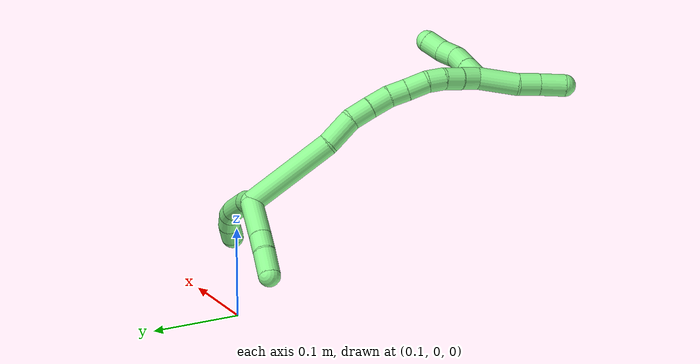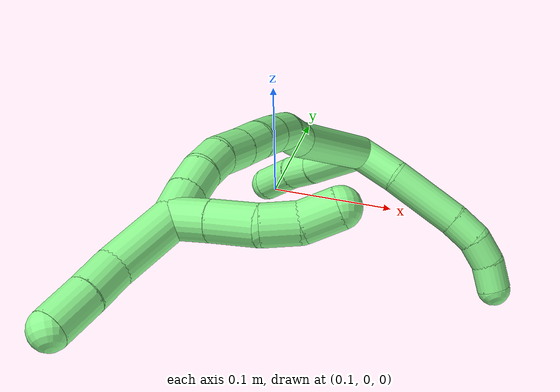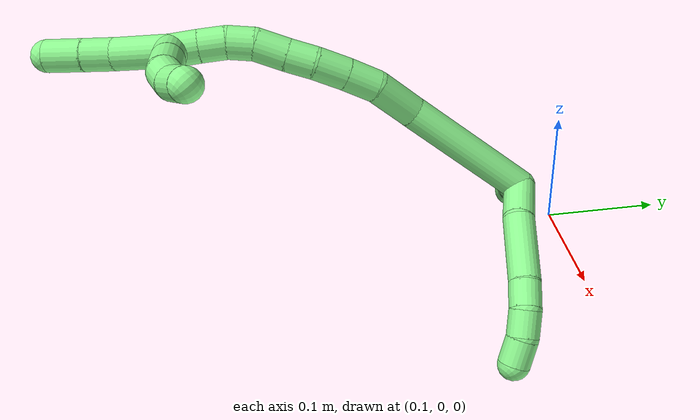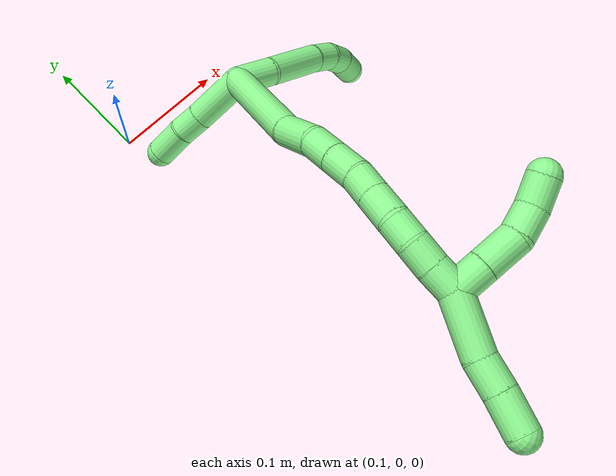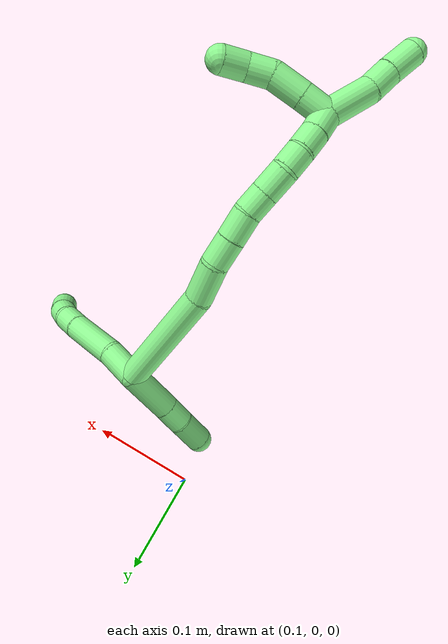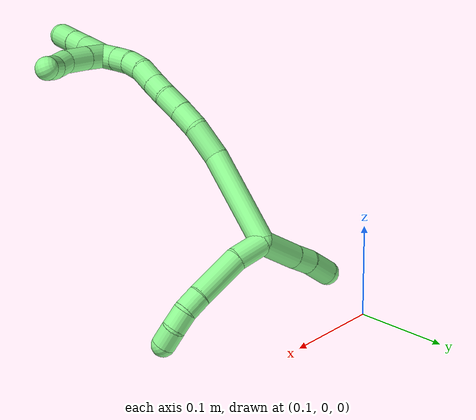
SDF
<sdf version="1.7">
 <world name="default">
  <model name="13">
   <static>0</static>
   <link name="13">
    <collision name="collision-cylinder-e_1_2_8">
     <pose>-0.002527 0.010666 0.01242 -0.709589 -0.153142 0.05683</pose>
     <geometry><cylinder><radius>0.0125</radius><length>0.03313</length></cylinder></geometry>
     <surface>
      <friction><ode><mu>1.16</mu><mu2>1.16</mu2><slip1>0</slip1><slip2>0</slip2></ode></friction>
      <contact><ode><kp>1e+06</kp><kd>1</kd><max_vel>0</max_vel><min_depth>0.001</min_depth></ode></contact>
     </surface>
    </collision>
    <visual name="visual-cylinder-e_1_2_8">
     <pose>-0.002527 0.010666 0.01242 -0.709589 -0.153142 0.05683</pose>
     <geometry><cylinder><radius>0.0125</radius><length>0.03313</length></cylinder></geometry>
     <material><ambient>0.564706 0.984314 0.572549 1</ambient></material>
    </visual>
    <collision name="collision-cylinder-e_2_8_9">
     <pose>-0.003657 0.040422 0.043829 -0.788026 0.051808 -0.021543</pose>
     <geometry><cylinder><radius>0.0125</radius><length>0.053925</length></cylinder></geometry>
     <surface>
      <friction><ode><mu>1.16</mu><mu2>1.16</mu2><slip1>0</slip1><slip2>0</slip2></ode></friction>
      <contact><ode><kp>1e+06</kp><kd>1</kd><max_vel>0</max_vel><min_depth>0.001</min_depth></ode></contact>
     </surface>
    </collision>
    <visual name="visual-cylinder-e_2_8_9">
     <pose>-0.003657 0.040422 0.043829 -0.788026 0.051808 -0.021543</pose>
     <geometry><cylinder><radius>0.0125</radius><length>0.053925</length></cylinder></geometry>
     <material><ambient>0.564706 0.984314 0.572549 1</ambient></material>
    </visual>
    <collision name="collision-cylinder-e_3_9_10">
     <pose>-0.000807 0.066414 0.070796 -0.713264 0.136973 -0.0511</pose>
     <geometry><cylinder><radius>0.0125</radius><length>0.021296</length></cylinder></geometry>
     <surface>
      <friction><ode><mu>1.16</mu><mu2>1.16</mu2><slip1>0</slip1><slip2>0</slip2></ode></friction>
      <contact><ode><kp>1e+06</kp><kd>1</kd><max_vel>0</max_vel><min_depth>0.001</min_depth></ode></contact>
     </surface>
    </collision>
    <visual name="visual-cylinder-e_3_9_10">
     <pose>-0.000807 0.066414 0.070796 -0.713264 0.136973 -0.0511</pose>
     <geometry><cylinder><radius>0.0125</radius><length>0.021296</length></cylinder></geometry>
     <material><ambient>0.564706 0.984314 0.572549 1</ambient></material>
    </visual>
    <collision name="collision-cylinder-e_4_10_11">
     <pose>0.004873 0.078209 0.086938 -0.539931 0.417821 -0.117197</pose>
     <geometry><cylinder><radius>0.0125</radius><length>0.020831</length></cylinder></geometry>
     <surface>
      <friction><ode><mu>1.16</mu><mu2>1.16</mu2><slip1>0</slip1><slip2>0</slip2></ode></friction>
      <contact><ode><kp>1e+06</kp><kd>1</kd><max_vel>0</max_vel><min_depth>0.001</min_depth></ode></contact>
     </surface>
    </collision>
    <visual name="visual-cylinder-e_4_10_11">
     <pose>0.004873 0.078209 0.086938 -0.539931 0.417821 -0.117197</pose>
     <geometry><cylinder><radius>0.0125</radius><length>0.020831</length></cylinder></geometry>
     <material><ambient>0.564706 0.984314 0.572549 1</ambient></material>
    </visual>
    <collision name="collision-cylinder-e_5_11_6">
     <pose>0.014531 0.085344 0.103695 -0.255148 0.549041 -0.072218</pose>
     <geometry><cylinder><radius>0.0125</radius><length>0.020818</length></cylinder></geometry>
     <surface>
      <friction><ode><mu>1.16</mu><mu2>1.16</mu2><slip1>0</slip1><slip2>0</slip2></ode></friction>
      <contact><ode><kp>1e+06</kp><kd>1</kd><max_vel>0</max_vel><min_depth>0.001</min_depth></ode></contact>
     </surface>
    </collision>
    <visual name="visual-cylinder-e_5_11_6">
     <pose>0.014531 0.085344 0.103695 -0.255148 0.549041 -0.072218</pose>
     <geometry><cylinder><radius>0.0125</radius><length>0.020818</length></cylinder></geometry>
     <material><ambient>0.564706 0.984314 0.572549 1</ambient></material>
    </visual>
    <collision name="collision-cylinder-e_1_2_12">
     <pose>0.0202 -0.011338 -0.005803 2.04385 1.00822 1.4679</pose>
     <geometry><cylinder><radius>0.0125</radius><length>0.047761</length></cylinder></geometry>
     <surface>
      <friction><ode><mu>1.16</mu><mu2>1.16</mu2><slip1>0</slip1><slip2>0</slip2></ode></friction>
      <contact><ode><kp>1e+06</kp><kd>1</kd><max_vel>0</max_vel><min_depth>0.001</min_depth></ode></contact>
     </surface>
    </collision>
    <visual name="visual-cylinder-e_1_2_12">
     <pose>0.0202 -0.011338 -0.005803 2.04385 1.00822 1.4679</pose>
     <geometry><cylinder><radius>0.0125</radius><length>0.047761</length></cylinder></geometry>
     <material><ambient>0.564706 0.984314 0.572549 1</ambient></material>
    </visual>
    <collision name="collision-cylinder-e_2_12_13">
     <pose>0.049596 -0.028033 -0.014888 2.12049 0.97145 1.51167</pose>
     <geometry><cylinder><radius>0.0125</radius><length>0.022275</length></cylinder></geometry>
     <surface>
      <friction><ode><mu>1.16</mu><mu2>1.16</mu2><slip1>0</slip1><slip2>0</slip2></ode></friction>
      <contact><ode><kp>1e+06</kp><kd>1</kd><max_vel>0</max_vel><min_depth>0.001</min_depth></ode></contact>
     </surface>
    </collision>
    <visual name="visual-cylinder-e_2_12_13">
     <pose>0.049596 -0.028033 -0.014888 2.12049 0.97145 1.51167</pose>
     <geometry><cylinder><radius>0.0125</radius><length>0.022275</length></cylinder></geometry>
     <material><ambient>0.564706 0.984314 0.572549 1</ambient></material>
    </visual>
    <collision name="collision-cylinder-e_3_13_5">
     <pose>0.072102 -0.039688 -0.020943 1.98548 1.09368 1.50164</pose>
     <geometry><cylinder><radius>0.0125</radius><length>0.029964</length></cylinder></geometry>
     <surface>
      <friction><ode><mu>1.16</mu><mu2>1.16</mu2><slip1>0</slip1><slip2>0</slip2></ode></friction>
      <contact><ode><kp>1e+06</kp><kd>1</kd><max_vel>0</max_vel><min_depth>0.001</min_depth></ode></contact>
     </surface>
    </collision>
    <visual name="visual-cylinder-e_3_13_5">
     <pose>0.072102 -0.039688 -0.020943 1.98548 1.09368 1.50164</pose>
     <geometry><cylinder><radius>0.0125</radius><length>0.029964</length></cylinder></geometry>
     <material><ambient>0.564706 0.984314 0.572549 1</ambient></material>
    </visual>
    <collision name="collision-cylinder-e_1_2_14">
     <pose>-0.035172 -0.037586 0.012695 1.24507 -0.725343 -0.531803</pose>
     <geometry><cylinder><radius>0.0125</radius><length>0.106037</length></cylinder></geometry>
     <surface>
      <friction><ode><mu>1.16</mu><mu2>1.16</mu2><slip1>0</slip1><slip2>0</slip2></ode></friction>
      <contact><ode><kp>1e+06</kp><kd>1</kd><max_vel>0</max_vel><min_depth>0.001</min_depth></ode></contact>
     </surface>
    </collision>
    <visual name="visual-cylinder-e_1_2_14">
     <pose>-0.035172 -0.037586 0.012695 1.24507 -0.725343 -0.531803</pose>
     <geometry><cylinder><radius>0.0125</radius><length>0.106037</length></cylinder></geometry>
     <material><ambient>0.564706 0.984314 0.572549 1</ambient></material>
    </visual>
    <collision name="collision-cylinder-e_2_14_15">
     <pose>-0.085117 -0.084847 0.030668 1.07139 -0.929865 -0.578783</pose>
     <geometry><cylinder><radius>0.0125</radius><length>0.036861</length></cylinder></geometry>
     <surface>
      <friction><ode><mu>1.16</mu><mu2>1.16</mu2><slip1>0</slip1><slip2>0</slip2></ode></friction>
      <contact><ode><kp>1e+06</kp><kd>1</kd><max_vel>0</max_vel><min_depth>0.001</min_depth></ode></contact>
     </surface>
    </collision>
    <visual name="visual-cylinder-e_2_14_15">
     <pose>-0.085117 -0.084847 0.030668 1.07139 -0.929865 -0.578783</pose>
     <geometry><cylinder><radius>0.0125</radius><length>0.036861</length></cylinder></geometry>
     <material><ambient>0.564706 0.984314 0.572549 1</ambient></material>
    </visual>
    <collision name="collision-cylinder-e_3_15_16">
     <pose>-0.107674 -0.102614 0.041564 0.963944 -0.668736 -0.359553</pose>
     <geometry><cylinder><radius>0.0125</radius><length>0.02511</length></cylinder></geometry>
     <surface>
      <friction><ode><mu>1.16</mu><mu2>1.16</mu2><slip1>0</slip1><slip2>0</slip2></ode></friction>
      <contact><ode><kp>1e+06</kp><kd>1</kd><max_vel>0</max_vel><min_depth>0.001</min_depth></ode></contact>
     </surface>
    </collision>
    <visual name="visual-cylinder-e_3_15_16">
     <pose>-0.107674 -0.102614 0.041564 0.963944 -0.668736 -0.359553</pose>
     <geometry><cylinder><radius>0.0125</radius><length>0.02511</length></cylinder></geometry>
     <material><ambient>0.564706 0.984314 0.572549 1</ambient></material>
    </visual>
    <collision name="collision-cylinder-e_4_16_17">
     <pose>-0.122965 -0.118657 0.053269 0.917422 -0.643193 -0.326138</pose>
     <geometry><cylinder><radius>0.0125</radius><length>0.025031</length></cylinder></geometry>
     <surface>
      <friction><ode><mu>1.16</mu><mu2>1.16</mu2><slip1>0</slip1><slip2>0</slip2></ode></friction>
      <contact><ode><kp>1e+06</kp><kd>1</kd><max_vel>0</max_vel><min_depth>0.001</min_depth></ode></contact>
     </surface>
    </collision>
    <visual name="visual-cylinder-e_4_16_17">
     <pose>-0.122965 -0.118657 0.053269 0.917422 -0.643193 -0.326138</pose>
     <geometry><cylinder><radius>0.0125</radius><length>0.025031</length></cylinder></geometry>
     <material><ambient>0.564706 0.984314 0.572549 1</ambient></material>
    </visual>
    <collision name="collision-cylinder-e_5_17_18">
     <pose>-0.135156 -0.134518 0.064565 0.988419 -0.459431 -0.250672</pose>
     <geometry><cylinder><radius>0.0125</radius><length>0.021131</length></cylinder></geometry>
     <surface>
      <friction><ode><mu>1.16</mu><mu2>1.16</mu2><slip1>0</slip1><slip2>0</slip2></ode></friction>
      <contact><ode><kp>1e+06</kp><kd>1</kd><max_vel>0</max_vel><min_depth>0.001</min_depth></ode></contact>
     </surface>
    </collision>
    <visual name="visual-cylinder-e_5_17_18">
     <pose>-0.135156 -0.134518 0.064565 0.988419 -0.459431 -0.250672</pose>
     <geometry><cylinder><radius>0.0125</radius><length>0.021131</length></cylinder></geometry>
     <material><ambient>0.564706 0.984314 0.572549 1</ambient></material>
    </visual>
    <collision name="collision-cylinder-e_6_18_19">
     <pose>-0.145641 -0.151616 0.075436 1.0185 -0.493119 -0.279235</pose>
     <geometry><cylinder><radius>0.0125</radius><length>0.024506</length></cylinder></geometry>
     <surface>
      <friction><ode><mu>1.16</mu><mu2>1.16</mu2><slip1>0</slip1><slip2>0</slip2></ode></friction>
      <contact><ode><kp>1e+06</kp><kd>1</kd><max_vel>0</max_vel><min_depth>0.001</min_depth></ode></contact>
     </surface>
    </collision>
    <visual name="visual-cylinder-e_6_18_19">
     <pose>-0.145641 -0.151616 0.075436 1.0185 -0.493119 -0.279235</pose>
     <geometry><cylinder><radius>0.0125</radius><length>0.024506</length></cylinder></geometry>
     <material><ambient>0.564706 0.984314 0.572549 1</ambient></material>
    </visual>
    <collision name="collision-cylinder-e_7_19_20">
     <pose>-0.154492 -0.167747 0.087656 0.813928 -0.309131 -0.134114</pose>
     <geometry><cylinder><radius>0.0125</radius><length>0.02005</length></cylinder></geometry>
     <surface>
      <friction><ode><mu>1.16</mu><mu2>1.16</mu2><slip1>0</slip1><slip2>0</slip2></ode></friction>
      <contact><ode><kp>1e+06</kp><kd>1</kd><max_vel>0</max_vel><min_depth>0.001</min_depth></ode></contact>
     </surface>
    </collision>
    <visual name="visual-cylinder-e_7_19_20">
     <pose>-0.154492 -0.167747 0.087656 0.813928 -0.309131 -0.134114</pose>
     <geometry><cylinder><radius>0.0125</radius><length>0.02005</length></cylinder></geometry>
     <material><ambient>0.564706 0.984314 0.572549 1</ambient></material>
    </visual>
    <collision name="collision-cylinder-e_8_20_21">
     <pose>-0.159222 -0.18104 0.102135 0.675744 -0.164055 -0.057753</pose>
     <geometry><cylinder><radius>0.0125</radius><length>0.020582</length></cylinder></geometry>
     <surface>
      <friction><ode><mu>1.16</mu><mu2>1.16</mu2><slip1>0</slip1><slip2>0</slip2></ode></friction>
      <contact><ode><kp>1e+06</kp><kd>1</kd><max_vel>0</max_vel><min_depth>0.001</min_depth></ode></contact>
     </surface>
    </collision>
    <visual name="visual-cylinder-e_8_20_21">
     <pose>-0.159222 -0.18104 0.102135 0.675744 -0.164055 -0.057753</pose>
     <geometry><cylinder><radius>0.0125</radius><length>0.020582</length></cylinder></geometry>
     <material><ambient>0.564706 0.984314 0.572549 1</ambient></material>
    </visual>
    <collision name="collision-cylinder-e_9_21_1">
     <pose>-0.162915 -0.193146 0.118415 0.60308 -0.19575 -0.061059</pose>
     <geometry><cylinder><radius>0.0125</radius><length>0.020691</length></cylinder></geometry>
     <surface>
      <friction><ode><mu>1.16</mu><mu2>1.16</mu2><slip1>0</slip1><slip2>0</slip2></ode></friction>
      <contact><ode><kp>1e+06</kp><kd>1</kd><max_vel>0</max_vel><min_depth>0.001</min_depth></ode></contact>
     </surface>
    </collision>
    <visual name="visual-cylinder-e_9_21_1">
     <pose>-0.162915 -0.193146 0.118415 0.60308 -0.19575 -0.061059</pose>
     <geometry><cylinder><radius>0.0125</radius><length>0.020691</length></cylinder></geometry>
     <material><ambient>0.564706 0.984314 0.572549 1</ambient></material>
    </visual>
    <collision name="collision-cylinder-e_1_1_22">
     <pose>-0.163995 -0.217712 0.140279 0.948061 0.040239 0.020646</pose>
     <geometry><cylinder><radius>0.0125</radius><length>0.046352</length></cylinder></geometry>
     <surface>
      <friction><ode><mu>1.16</mu><mu2>1.16</mu2><slip1>0</slip1><slip2>0</slip2></ode></friction>
      <contact><ode><kp>1e+06</kp><kd>1</kd><max_vel>0</max_vel><min_depth>0.001</min_depth></ode></contact>
     </surface>
    </collision>
    <visual name="visual-cylinder-e_1_1_22">
     <pose>-0.163995 -0.217712 0.140279 0.948061 0.040239 0.020646</pose>
     <geometry><cylinder><radius>0.0125</radius><length>0.046352</length></cylinder></geometry>
     <material><ambient>0.564706 0.984314 0.572549 1</ambient></material>
    </visual>
    <collision name="collision-cylinder-e_2_22_23">
     <pose>-0.164691 -0.245383 0.161772 0.837265 -0.135671 -0.060439</pose>
     <geometry><cylinder><radius>0.0125</radius><length>0.024079</length></cylinder></geometry>
     <surface>
      <friction><ode><mu>1.16</mu><mu2>1.16</mu2><slip1>0</slip1><slip2>0</slip2></ode></friction>
      <contact><ode><kp>1e+06</kp><kd>1</kd><max_vel>0</max_vel><min_depth>0.001</min_depth></ode></contact>
     </surface>
    </collision>
    <visual name="visual-cylinder-e_2_22_23">
     <pose>-0.164691 -0.245383 0.161772 0.837265 -0.135671 -0.060439</pose>
     <geometry><cylinder><radius>0.0125</radius><length>0.024079</length></cylinder></geometry>
     <material><ambient>0.564706 0.984314 0.572549 1</ambient></material>
    </visual>
    <collision name="collision-cylinder-e_3_23_4">
     <pose>-0.167665 -0.265564 0.179173 0.877054 -0.091122 -0.042758</pose>
     <geometry><cylinder><radius>0.0125</radius><length>0.029569</length></cylinder></geometry>
     <surface>
      <friction><ode><mu>1.16</mu><mu2>1.16</mu2><slip1>0</slip1><slip2>0</slip2></ode></friction>
      <contact><ode><kp>1e+06</kp><kd>1</kd><max_vel>0</max_vel><min_depth>0.001</min_depth></ode></contact>
     </surface>
    </collision>
    <visual name="visual-cylinder-e_3_23_4">
     <pose>-0.167665 -0.265564 0.179173 0.877054 -0.091122 -0.042758</pose>
     <geometry><cylinder><radius>0.0125</radius><length>0.029569</length></cylinder></geometry>
     <material><ambient>0.564706 0.984314 0.572549 1</ambient></material>
    </visual>
    <collision name="collision-cylinder-e_1_1_24">
     <pose>-0.171719 -0.189865 0.131866 -1.05755 -0.579675 0.345039</pose>
     <geometry><cylinder><radius>0.0125</radius><length>0.024798</length></cylinder></geometry>
     <surface>
      <friction><ode><mu>1.16</mu><mu2>1.16</mu2><slip1>0</slip1><slip2>0</slip2></ode></friction>
      <contact><ode><kp>1e+06</kp><kd>1</kd><max_vel>0</max_vel><min_depth>0.001</min_depth></ode></contact>
     </surface>
    </collision>
    <visual name="visual-cylinder-e_1_1_24">
     <pose>-0.171719 -0.189865 0.131866 -1.05755 -0.579675 0.345039</pose>
     <geometry><cylinder><radius>0.0125</radius><length>0.024798</length></cylinder></geometry>
     <material><ambient>0.564706 0.984314 0.572549 1</ambient></material>
    </visual>
    <collision name="collision-cylinder-e_2_24_25">
     <pose>-0.186162 -0.169853 0.143228 -1.05185 -0.544333 0.32121</pose>
     <geometry><cylinder><radius>0.0125</radius><length>0.029549</length></cylinder></geometry>
     <surface>
      <friction><ode><mu>1.16</mu><mu2>1.16</mu2><slip1>0</slip1><slip2>0</slip2></ode></friction>
      <contact><ode><kp>1e+06</kp><kd>1</kd><max_vel>0</max_vel><min_depth>0.001</min_depth></ode></contact>
     </surface>
    </collision>
    <visual name="visual-cylinder-e_2_24_25">
     <pose>-0.186162 -0.169853 0.143228 -1.05185 -0.544333 0.32121</pose>
     <geometry><cylinder><radius>0.0125</radius><length>0.029549</length></cylinder></geometry>
     <material><ambient>0.564706 0.984314 0.572549 1</ambient></material>
    </visual>
    <collision name="collision-cylinder-e_3_25_26">
     <pose>-0.197852 -0.148533 0.151589 -1.37119 -0.365571 0.300123</pose>
     <geometry><cylinder><radius>0.0125</radius><length>0.022602</length></cylinder></geometry>
     <surface>
      <friction><ode><mu>1.16</mu><mu2>1.16</mu2><slip1>0</slip1><slip2>0</slip2></ode></friction>
      <contact><ode><kp>1e+06</kp><kd>1</kd><max_vel>0</max_vel><min_depth>0.001</min_depth></ode></contact>
     </surface>
    </collision>
    <visual name="visual-cylinder-e_3_25_26">
     <pose>-0.197852 -0.148533 0.151589 -1.37119 -0.365571 0.300123</pose>
     <geometry><cylinder><radius>0.0125</radius><length>0.022602</length></cylinder></geometry>
     <material><ambient>0.564706 0.984314 0.572549 1</ambient></material>
    </visual>
    <collision name="collision-cylinder-e_4_26_3">
     <pose>-0.207674 -0.128257 0.152797 -1.65974 -0.525497 0.571923</pose>
     <geometry><cylinder><radius>0.0125</radius><length>0.023051</length></cylinder></geometry>
     <surface>
      <friction><ode><mu>1.16</mu><mu2>1.16</mu2><slip1>0</slip1><slip2>0</slip2></ode></friction>
      <contact><ode><kp>1e+06</kp><kd>1</kd><max_vel>0</max_vel><min_depth>0.001</min_depth></ode></contact>
     </surface>
    </collision>
    <visual name="visual-cylinder-e_4_26_3">
     <pose>-0.207674 -0.128257 0.152797 -1.65974 -0.525497 0.571923</pose>
     <geometry><cylinder><radius>0.0125</radius><length>0.023051</length></cylinder></geometry>
     <material><ambient>0.564706 0.984314 0.572549 1</ambient></material>
    </visual>
    <collision name="collision-sphere-3">
     <pose>-0.213456 -0.118326 0.151911 0 -0 0</pose>
     <geometry><sphere><radius>0.0125</radius></sphere></geometry>
     <surface>
      <friction><ode><mu>1.16</mu><mu2>1.16</mu2><slip1>0</slip1><slip2>0</slip2></ode></friction>
      <contact><ode><kp>1e+06</kp><kd>1</kd><max_vel>0</max_vel><min_depth>0.001</min_depth></ode></contact>
     </surface>
    </collision>
    <visual name="visual-sphere-3">
     <pose>-0.213456 -0.118326 0.151911 0 -0 0</pose>
     <geometry><sphere><radius>0.0125</radius></sphere></geometry>
     <material><ambient>0.564706 0.984314 0.572549 1</ambient></material>
    </visual>
    <collision name="collision-sphere-26">
     <pose>-0.201892 -0.138188 0.153682 0 -0 0</pose>
     <geometry><sphere><radius>0.0125</radius></sphere></geometry>
     <surface>
      <friction><ode><mu>1.16</mu><mu2>1.16</mu2><slip1>0</slip1><slip2>0</slip2></ode></friction>
      <contact><ode><kp>1e+06</kp><kd>1</kd><max_vel>0</max_vel><min_depth>0.001</min_depth></ode></contact>
     </surface>
    </collision>
    <visual name="visual-sphere-26">
     <pose>-0.201892 -0.138188 0.153682 0 -0 0</pose>
     <geometry><sphere><radius>0.0125</radius></sphere></geometry>
     <material><ambient>0.564706 0.984314 0.572549 1</ambient></material>
    </visual>
    <collision name="collision-sphere-25">
     <pose>-0.193813 -0.158877 0.149497 0 -0 0</pose>
     <geometry><sphere><radius>0.0125</radius></sphere></geometry>
     <surface>
      <friction><ode><mu>1.16</mu><mu2>1.16</mu2><slip1>0</slip1><slip2>0</slip2></ode></friction>
      <contact><ode><kp>1e+06</kp><kd>1</kd><max_vel>0</max_vel><min_depth>0.001</min_depth></ode></contact>
     </surface>
    </collision>
    <visual name="visual-sphere-25">
     <pose>-0.193813 -0.158877 0.149497 0 -0 0</pose>
     <geometry><sphere><radius>0.0125</radius></sphere></geometry>
     <material><ambient>0.564706 0.984314 0.572549 1</ambient></material>
    </visual>
    <collision name="collision-sphere-24">
     <pose>-0.178511 -0.180828 0.136959 0 -0 0</pose>
     <geometry><sphere><radius>0.0125</radius></sphere></geometry>
     <surface>
      <friction><ode><mu>1.16</mu><mu2>1.16</mu2><slip1>0</slip1><slip2>0</slip2></ode></friction>
      <contact><ode><kp>1e+06</kp><kd>1</kd><max_vel>0</max_vel><min_depth>0.001</min_depth></ode></contact>
     </surface>
    </collision>
    <visual name="visual-sphere-24">
     <pose>-0.178511 -0.180828 0.136959 0 -0 0</pose>
     <geometry><sphere><radius>0.0125</radius></sphere></geometry>
     <material><ambient>0.564706 0.984314 0.572549 1</ambient></material>
    </visual>
    <collision name="collision-sphere-4">
     <pose>-0.16901 -0.276884 0.188587 0 -0 0</pose>
     <geometry><sphere><radius>0.0125</radius></sphere></geometry>
     <surface>
      <friction><ode><mu>1.16</mu><mu2>1.16</mu2><slip1>0</slip1><slip2>0</slip2></ode></friction>
      <contact><ode><kp>1e+06</kp><kd>1</kd><max_vel>0</max_vel><min_depth>0.001</min_depth></ode></contact>
     </surface>
    </collision>
    <visual name="visual-sphere-4">
     <pose>-0.16901 -0.276884 0.188587 0 -0 0</pose>
     <geometry><sphere><radius>0.0125</radius></sphere></geometry>
     <material><ambient>0.564706 0.984314 0.572549 1</ambient></material>
    </visual>
    <collision name="collision-sphere-23">
     <pose>-0.16632 -0.254244 0.169758 0 -0 0</pose>
     <geometry><sphere><radius>0.0125</radius></sphere></geometry>
     <surface>
      <friction><ode><mu>1.16</mu><mu2>1.16</mu2><slip1>0</slip1><slip2>0</slip2></ode></friction>
      <contact><ode><kp>1e+06</kp><kd>1</kd><max_vel>0</max_vel><min_depth>0.001</min_depth></ode></contact>
     </surface>
    </collision>
    <visual name="visual-sphere-23">
     <pose>-0.16632 -0.254244 0.169758 0 -0 0</pose>
     <geometry><sphere><radius>0.0125</radius></sphere></geometry>
     <material><ambient>0.564706 0.984314 0.572549 1</ambient></material>
    </visual>
    <collision name="collision-sphere-22">
     <pose>-0.163063 -0.236522 0.153786 0 -0 0</pose>
     <geometry><sphere><radius>0.0125</radius></sphere></geometry>
     <surface>
      <friction><ode><mu>1.16</mu><mu2>1.16</mu2><slip1>0</slip1><slip2>0</slip2></ode></friction>
      <contact><ode><kp>1e+06</kp><kd>1</kd><max_vel>0</max_vel><min_depth>0.001</min_depth></ode></contact>
     </surface>
    </collision>
    <visual name="visual-sphere-22">
     <pose>-0.163063 -0.236522 0.153786 0 -0 0</pose>
     <geometry><sphere><radius>0.0125</radius></sphere></geometry>
     <material><ambient>0.564706 0.984314 0.572549 1</ambient></material>
    </visual>
    <collision name="collision-sphere-1">
     <pose>-0.164927 -0.198902 0.126773 0 -0 0</pose>
     <geometry><sphere><radius>0.0125</radius></sphere></geometry>
     <surface>
      <friction><ode><mu>1.16</mu><mu2>1.16</mu2><slip1>0</slip1><slip2>0</slip2></ode></friction>
      <contact><ode><kp>1e+06</kp><kd>1</kd><max_vel>0</max_vel><min_depth>0.001</min_depth></ode></contact>
     </surface>
    </collision>
    <visual name="visual-sphere-1">
     <pose>-0.164927 -0.198902 0.126773 0 -0 0</pose>
     <geometry><sphere><radius>0.0125</radius></sphere></geometry>
     <material><ambient>0.564706 0.984314 0.572549 1</ambient></material>
    </visual>
    <collision name="collision-sphere-21">
     <pose>-0.160903 -0.18739 0.110057 0 -0 0</pose>
     <geometry><sphere><radius>0.0125</radius></sphere></geometry>
     <surface>
      <friction><ode><mu>1.16</mu><mu2>1.16</mu2><slip1>0</slip1><slip2>0</slip2></ode></friction>
      <contact><ode><kp>1e+06</kp><kd>1</kd><max_vel>0</max_vel><min_depth>0.001</min_depth></ode></contact>
     </surface>
    </collision>
    <visual name="visual-sphere-21">
     <pose>-0.160903 -0.18739 0.110057 0 -0 0</pose>
     <geometry><sphere><radius>0.0125</radius></sphere></geometry>
     <material><ambient>0.564706 0.984314 0.572549 1</ambient></material>
    </visual>
    <collision name="collision-sphere-6">
     <pose>0.019963 0.087585 0.112286 0 -0 0</pose>
     <geometry><sphere><radius>0.0125</radius></sphere></geometry>
     <surface>
      <friction><ode><mu>1.16</mu><mu2>1.16</mu2><slip1>0</slip1><slip2>0</slip2></ode></friction>
      <contact><ode><kp>1e+06</kp><kd>1</kd><max_vel>0</max_vel><min_depth>0.001</min_depth></ode></contact>
     </surface>
    </collision>
    <visual name="visual-sphere-6">
     <pose>0.019963 0.087585 0.112286 0 -0 0</pose>
     <geometry><sphere><radius>0.0125</radius></sphere></geometry>
     <material><ambient>0.564706 0.984314 0.572549 1</ambient></material>
    </visual>
    <collision name="collision-sphere-11">
     <pose>0.009099 0.083103 0.095103 0 -0 0</pose>
     <geometry><sphere><radius>0.0125</radius></sphere></geometry>
     <surface>
      <friction><ode><mu>1.16</mu><mu2>1.16</mu2><slip1>0</slip1><slip2>0</slip2></ode></friction>
      <contact><ode><kp>1e+06</kp><kd>1</kd><max_vel>0</max_vel><min_depth>0.001</min_depth></ode></contact>
     </surface>
    </collision>
    <visual name="visual-sphere-11">
     <pose>0.009099 0.083103 0.095103 0 -0 0</pose>
     <geometry><sphere><radius>0.0125</radius></sphere></geometry>
     <material><ambient>0.564706 0.984314 0.572549 1</ambient></material>
    </visual>
    <collision name="collision-sphere-10">
     <pose>0.000647 0.073316 0.078773 0 -0 0</pose>
     <geometry><sphere><radius>0.0125</radius></sphere></geometry>
     <surface>
      <friction><ode><mu>1.16</mu><mu2>1.16</mu2><slip1>0</slip1><slip2>0</slip2></ode></friction>
      <contact><ode><kp>1e+06</kp><kd>1</kd><max_vel>0</max_vel><min_depth>0.001</min_depth></ode></contact>
     </surface>
    </collision>
    <visual name="visual-sphere-10">
     <pose>0.000647 0.073316 0.078773 0 -0 0</pose>
     <geometry><sphere><radius>0.0125</radius></sphere></geometry>
     <material><ambient>0.564706 0.984314 0.572549 1</ambient></material>
    </visual>
    <collision name="collision-sphere-9">
     <pose>-0.002261 0.059512 0.062819 0 -0 0</pose>
     <geometry><sphere><radius>0.0125</radius></sphere></geometry>
     <surface>
      <friction><ode><mu>1.16</mu><mu2>1.16</mu2><slip1>0</slip1><slip2>0</slip2></ode></friction>
      <contact><ode><kp>1e+06</kp><kd>1</kd><max_vel>0</max_vel><min_depth>0.001</min_depth></ode></contact>
     </surface>
    </collision>
    <visual name="visual-sphere-9">
     <pose>-0.002261 0.059512 0.062819 0 -0 0</pose>
     <geometry><sphere><radius>0.0125</radius></sphere></geometry>
     <material><ambient>0.564706 0.984314 0.572549 1</ambient></material>
    </visual>
    <collision name="collision-sphere-2">
     <geometry><sphere><radius>0.0125</radius></sphere></geometry>
     <surface>
      <friction><ode><mu>1.16</mu><mu2>1.16</mu2><slip1>0</slip1><slip2>0</slip2></ode></friction>
      <contact><ode><kp>1e+06</kp><kd>1</kd><max_vel>0</max_vel><min_depth>0.001</min_depth></ode></contact>
     </surface>
    </collision>
    <visual name="visual-sphere-2">
     <geometry><sphere><radius>0.0125</radius></sphere></geometry>
     <material><ambient>0.564706 0.984314 0.572549 1</ambient></material>
    </visual>
    <collision name="collision-sphere-19">
     <pose>-0.151442 -0.160804 0.081099 0 -0 0</pose>
     <geometry><sphere><radius>0.0125</radius></sphere></geometry>
     <surface>
      <friction><ode><mu>1.16</mu><mu2>1.16</mu2><slip1>0</slip1><slip2>0</slip2></ode></friction>
      <contact><ode><kp>1e+06</kp><kd>1</kd><max_vel>0</max_vel><min_depth>0.001</min_depth></ode></contact>
     </surface>
    </collision>
    <visual name="visual-sphere-19">
     <pose>-0.151442 -0.160804 0.081099 0 -0 0</pose>
     <geometry><sphere><radius>0.0125</radius></sphere></geometry>
     <material><ambient>0.564706 0.984314 0.572549 1</ambient></material>
    </visual>
    <collision name="collision-sphere-8">
     <pose>-0.005054 0.021332 0.024839 0 -0 0</pose>
     <geometry><sphere><radius>0.0125</radius></sphere></geometry>
     <surface>
      <friction><ode><mu>1.16</mu><mu2>1.16</mu2><slip1>0</slip1><slip2>0</slip2></ode></friction>
      <contact><ode><kp>1e+06</kp><kd>1</kd><max_vel>0</max_vel><min_depth>0.001</min_depth></ode></contact>
     </surface>
    </collision>
    <visual name="visual-sphere-8">
     <pose>-0.005054 0.021332 0.024839 0 -0 0</pose>
     <geometry><sphere><radius>0.0125</radius></sphere></geometry>
     <material><ambient>0.564706 0.984314 0.572549 1</ambient></material>
    </visual>
    <collision name="collision-sphere-12">
     <pose>0.0404 -0.022676 -0.011606 0 -0 0</pose>
     <geometry><sphere><radius>0.0125</radius></sphere></geometry>
     <surface>
      <friction><ode><mu>1.16</mu><mu2>1.16</mu2><slip1>0</slip1><slip2>0</slip2></ode></friction>
      <contact><ode><kp>1e+06</kp><kd>1</kd><max_vel>0</max_vel><min_depth>0.001</min_depth></ode></contact>
     </surface>
    </collision>
    <visual name="visual-sphere-12">
     <pose>0.0404 -0.022676 -0.011606 0 -0 0</pose>
     <geometry><sphere><radius>0.0125</radius></sphere></geometry>
     <material><ambient>0.564706 0.984314 0.572549 1</ambient></material>
    </visual>
    <collision name="collision-sphere-13">
     <pose>0.058793 -0.033391 -0.01817 0 -0 0</pose>
     <geometry><sphere><radius>0.0125</radius></sphere></geometry>
     <surface>
      <friction><ode><mu>1.16</mu><mu2>1.16</mu2><slip1>0</slip1><slip2>0</slip2></ode></friction>
      <contact><ode><kp>1e+06</kp><kd>1</kd><max_vel>0</max_vel><min_depth>0.001</min_depth></ode></contact>
     </surface>
    </collision>
    <visual name="visual-sphere-13">
     <pose>0.058793 -0.033391 -0.01817 0 -0 0</pose>
     <geometry><sphere><radius>0.0125</radius></sphere></geometry>
     <material><ambient>0.564706 0.984314 0.572549 1</ambient></material>
    </visual>
    <collision name="collision-sphere-5">
     <pose>0.085411 -0.045985 -0.023715 0 -0 0</pose>
     <geometry><sphere><radius>0.0125</radius></sphere></geometry>
     <surface>
      <friction><ode><mu>1.16</mu><mu2>1.16</mu2><slip1>0</slip1><slip2>0</slip2></ode></friction>
      <contact><ode><kp>1e+06</kp><kd>1</kd><max_vel>0</max_vel><min_depth>0.001</min_depth></ode></contact>
     </surface>
    </collision>
    <visual name="visual-sphere-5">
     <pose>0.085411 -0.045985 -0.023715 0 -0 0</pose>
     <geometry><sphere><radius>0.0125</radius></sphere></geometry>
     <material><ambient>0.564706 0.984314 0.572549 1</ambient></material>
    </visual>
    <collision name="collision-sphere-14">
     <pose>-0.070344 -0.075173 0.02539 0 -0 0</pose>
     <geometry><sphere><radius>0.0125</radius></sphere></geometry>
     <surface>
      <friction><ode><mu>1.16</mu><mu2>1.16</mu2><slip1>0</slip1><slip2>0</slip2></ode></friction>
      <contact><ode><kp>1e+06</kp><kd>1</kd><max_vel>0</max_vel><min_depth>0.001</min_depth></ode></contact>
     </surface>
    </collision>
    <visual name="visual-sphere-14">
     <pose>-0.070344 -0.075173 0.02539 0 -0 0</pose>
     <geometry><sphere><radius>0.0125</radius></sphere></geometry>
     <material><ambient>0.564706 0.984314 0.572549 1</ambient></material>
    </visual>
    <collision name="collision-sphere-15">
     <pose>-0.09989 -0.094522 0.035946 0 -0 0</pose>
     <geometry><sphere><radius>0.0125</radius></sphere></geometry>
     <surface>
      <friction><ode><mu>1.16</mu><mu2>1.16</mu2><slip1>0</slip1><slip2>0</slip2></ode></friction>
      <contact><ode><kp>1e+06</kp><kd>1</kd><max_vel>0</max_vel><min_depth>0.001</min_depth></ode></contact>
     </surface>
    </collision>
    <visual name="visual-sphere-15">
     <pose>-0.09989 -0.094522 0.035946 0 -0 0</pose>
     <geometry><sphere><radius>0.0125</radius></sphere></geometry>
     <material><ambient>0.564706 0.984314 0.572549 1</ambient></material>
    </visual>
    <collision name="collision-sphere-16">
     <pose>-0.115458 -0.110705 0.047181 0 -0 0</pose>
     <geometry><sphere><radius>0.0125</radius></sphere></geometry>
     <surface>
      <friction><ode><mu>1.16</mu><mu2>1.16</mu2><slip1>0</slip1><slip2>0</slip2></ode></friction>
      <contact><ode><kp>1e+06</kp><kd>1</kd><max_vel>0</max_vel><min_depth>0.001</min_depth></ode></contact>
     </surface>
    </collision>
    <visual name="visual-sphere-16">
     <pose>-0.115458 -0.110705 0.047181 0 -0 0</pose>
     <geometry><sphere><radius>0.0125</radius></sphere></geometry>
     <material><ambient>0.564706 0.984314 0.572549 1</ambient></material>
    </visual>
    <collision name="collision-sphere-17">
     <pose>-0.130471 -0.126609 0.059357 0 -0 0</pose>
     <geometry><sphere><radius>0.0125</radius></sphere></geometry>
     <surface>
      <friction><ode><mu>1.16</mu><mu2>1.16</mu2><slip1>0</slip1><slip2>0</slip2></ode></friction>
      <contact><ode><kp>1e+06</kp><kd>1</kd><max_vel>0</max_vel><min_depth>0.001</min_depth></ode></contact>
     </surface>
    </collision>
    <visual name="visual-sphere-17">
     <pose>-0.130471 -0.126609 0.059357 0 -0 0</pose>
     <geometry><sphere><radius>0.0125</radius></sphere></geometry>
     <material><ambient>0.564706 0.984314 0.572549 1</ambient></material>
    </visual>
    <collision name="collision-sphere-18">
     <pose>-0.139841 -0.142427 0.069774 0 -0 0</pose>
     <geometry><sphere><radius>0.0125</radius></sphere></geometry>
     <surface>
      <friction><ode><mu>1.16</mu><mu2>1.16</mu2><slip1>0</slip1><slip2>0</slip2></ode></friction>
      <contact><ode><kp>1e+06</kp><kd>1</kd><max_vel>0</max_vel><min_depth>0.001</min_depth></ode></contact>
     </surface>
    </collision>
    <visual name="visual-sphere-18">
     <pose>-0.139841 -0.142427 0.069774 0 -0 0</pose>
     <geometry><sphere><radius>0.0125</radius></sphere></geometry>
     <material><ambient>0.564706 0.984314 0.572549 1</ambient></material>
    </visual>
    <collision name="collision-sphere-20">
     <pose>-0.157542 -0.17469 0.094214 0 -0 0</pose>
     <geometry><sphere><radius>0.0125</radius></sphere></geometry>
     <surface>
      <friction><ode><mu>1.16</mu><mu2>1.16</mu2><slip1>0</slip1><slip2>0</slip2></ode></friction>
      <contact><ode><kp>1e+06</kp><kd>1</kd><max_vel>0</max_vel><min_depth>0.001</min_depth></ode></contact>
     </surface>
    </collision>
    <visual name="visual-sphere-20">
     <pose>-0.157542 -0.17469 0.094214 0 -0 0</pose>
     <geometry><sphere><radius>0.0125</radius></sphere></geometry>
     <material><ambient>0.564706 0.984314 0.572549 1</ambient></material>
    </visual>
    <inertial>
     <pose>-0.080035 -0.086932 0.068718 0 -0 0</pose>
     <mass>0.75</mass>
     <inertia><ixx>8.7e-05</ixx><ixy>0</ixy><ixz>0</ixz><iyy>7.4e-05</iyy><iyz>0</iyz><izz>0.000173</izz></inertia>
    </inertial>
   </link>
   <pose>0.187472 -0.060336 0.094078 -2.81836 1.07356 2.46318</pose>
  </model>
 </world>
</sdf>
